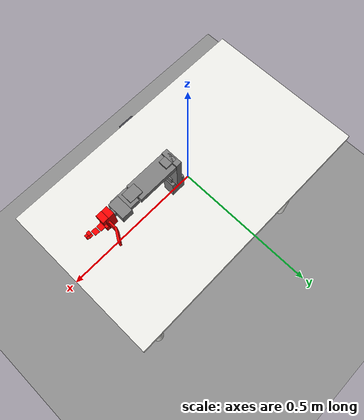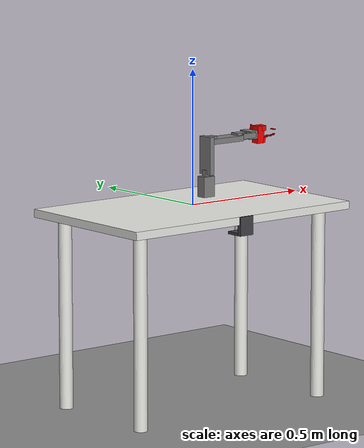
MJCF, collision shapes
<mujoco model="so101_clamped_table_scene">

  <compiler angle="radian" autolimits="true" meshdir="../../../so101_assets/assets"/>

  <include file="../../../so101_assets/so101.xml"/>

  <visual>
    <headlight diffuse="0.3 0.3 0.3" ambient="0.4 0.4 0.4" specular="0.1 0.1 0.1"/>
    <quality shadowsize="4096"/>
  </visual>

  <asset>
    <material name="table_white_mat" rgba="0.92 0.92 0.90 1" specular="0.15" shininess="0.2" reflectance="0.05"/>
    <material name="floor_mat" rgba="0.55 0.55 0.55 1" specular="0.05" shininess="0.0"/>
    <material name="clamp_mat" rgba="0.25 0.25 0.28 1" specular="0.6" shininess="0.7" reflectance="0.15"/>
    <material name="clamp_screw_mat" rgba="0.55 0.55 0.58 1" specular="0.8" shininess="0.8" reflectance="0.25"/>
  </asset>

  <default>
    <default class="table_collision">
      <geom contype="1" conaffinity="1" condim="3" friction="0.6 0.01 0.001" solref="0.005 1" solimp="0.95 0.99 0.001"/>
    </default>
    <!-- Visual-only: no collision, no mass contribution to contacts. -->
    <default class="clamp_visual">
      <geom contype="0" conaffinity="0" group="1" material="clamp_mat"/>
    </default>
  </default>

  <worldbody>
    <light name="top_light" pos="0 0 1.8" dir="0 0 -1" diffuse="0.6 0.6 0.6" specular="0.1 0.1 0.1" castshadow="true"/>

    <camera name="table_view" pos="0.9 -0.9 0.6" xyaxes="0.707 0.707 0 -0.4 0.4 0.82"/>

    <geom name="floor" type="plane" size="2.5 2.5 0.05" pos="0 0 -0.74" material="floor_mat" class="table_collision"/>

    <body name="table" pos="0 0 -0.74">
      <geom name="tabletop" type="box" size="0.50 0.30 0.015" pos="0 0 0.725"
            material="table_white_mat" class="table_collision"/>

      <geom name="table_leg_front_left" type="cylinder" size="0.025 0.355" pos="0.42 0.22 0.355"
            material="table_white_mat" class="table_collision"/>
      <geom name="table_leg_front_right" type="cylinder" size="0.025 0.355" pos="0.42 -0.22 0.355"
            material="table_white_mat" class="table_collision"/>
      <geom name="table_leg_back_left" type="cylinder" size="0.025 0.355" pos="-0.42 0.22 0.355"
            material="table_white_mat" class="table_collision"/>
      <geom name="table_leg_back_right" type="cylinder" size="0.025 0.355" pos="-0.42 -0.22 0.355"
            material="table_white_mat" class="table_collision"/>
    </body>

    <!-- C-clamp gripping the table edge under the robot's base plate.
         Positions/sizes here are placeholders overwritten by
         run_robot_clamped.py's CONFIG block before compile. -->
    <body name="clamp" pos="0 -0.264 0">
      <geom name="clamp_top_pad" class="clamp_visual" type="box" size="0.030 0.026 0.005" pos="0 0 -0.005"/>
      <geom name="clamp_spine" class="clamp_visual" type="box" size="0.030 0.008 0.035" pos="0 -0.034 -0.035"/>
      <geom name="clamp_bottom_jaw" class="clamp_visual" type="box" size="0.030 0.026 0.005" pos="0 0 -0.065"/>
      <geom name="clamp_screw" class="clamp_visual" type="cylinder" size="0.005 0.014" pos="0 0 -0.051"
            material="clamp_screw_mat"/>
      <geom name="clamp_screw_handle" class="clamp_visual" type="capsule" size="0.004 0.020"
            fromto="-0.020 0 -0.070 0.020 0 -0.070" material="clamp_screw_mat"/>
    </body>

  </worldbody>
</mujoco>

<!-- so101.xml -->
<mujoco model="so101">
  <option integrator="implicitfast" timestep="0.005" cone="elliptic" iterations="10" ls_iterations="20" impratio="10"/>

  <compiler angle="radian" autolimits="true"/>

  <visual>
    <scale contactwidth="0.1" contactheight="0.05" forcewidth="0.02" framelength="0.75" framewidth="0.025"
      camera="0.2"/>
  </visual>

  <default>
    <mesh maxhullvert="128"/>

    <default class="so101">
      <joint damping="1" frictionloss="0.1" armature="0.005"/>
      <position kp="50"/>
      <default class="visual">
        <geom type="mesh" contype="0" conaffinity="0" group="2"/>
      </default>
      <default class="collision">
        <geom group="3" condim="3"/>
      </default>
      <default class="collision_gripper">
        <geom group="3" condim="6" friction="0.45 5e-3 5e-4" solref="0.01 1" priority="1" rgba="1.0 0 0 1.0" mass="0"/>
      </default>
      <default class="collision_gripper_mesh">
        <geom group="4" condim="6" friction="1 5e-3 5e-4" solref="0.01 1" priority="1" rgba="1.0 0 0 1.0" mass="0"
          contype="0" conaffinity="0"/>
      </default>
    </default>

    <default class="sts3215">
      <geom contype="0" conaffinity="0"/>
      <joint damping="0.60" frictionloss="0.052" armature="0.028"/>
      <position kp="400" kv="25" forcerange="-2.94 2.94"/>
    </default>

    <default class="backlash">
      <!-- +/- 0.5° of backlash – not added to any joints for now -->
      <joint damping="0.01" frictionloss="0" armature="0.01" limited="true" range="-0.0087267 0.0087267"/>
    </default>
  </default>

  <asset>
    <mesh file="waveshare_mounting_plate_so101_v2.stl"/>
    <mesh file="sts3215_03a_v1.stl"/>
    <mesh file="motor_holder_so101_base_v1.stl"/>
    <mesh file="wrist_roll_follower_so101_v1.stl"/>
    <mesh file="moving_jaw_so101_v1.stl"/>
    <mesh file="base_motor_holder_so101_v1.stl"/>
    <mesh file="upper_arm_so101_v1.stl"/>
    <mesh file="wrist_roll_pitch_so101_v2.stl"/>
    <mesh file="under_arm_so101_v1.stl"/>
    <mesh file="rotation_pitch_so101_v1.stl"/>
    <mesh file="motor_holder_so101_wrist_v1.stl"/>
    <mesh file="sts3215_03a_no_horn_v1.stl"/>
    <mesh file="base_so101_v2.stl"/>
    <mesh file="moving_jaw_so101_gripper_v1.stl"/>
    <mesh file="wrist_roll_follower_so101_camera_mount.stl"/>
    <!-- Gripper collision meshes. -->
    <mesh maxhullvert="64" file="wrist_roll_follower_so101_gripper_part0_v1.stl"/>
    <mesh maxhullvert="64" file="moving_jaw_so101_gripper_part0_v1.stl"/>
    <mesh maxhullvert="64" file="moving_jaw_so101_gripper_part1_v1.stl"/>
    <material name="base_motor_holder_so101_v1_material" rgba="0.94 0.90 0.82 1"/>
    <material name="base_so101_v2_material" rgba="0.94 0.90 0.82 1"/>
    <material name="sts3215_03a_v1_material" rgba="0.15 0.15 0.15 1"/>
    <material name="waveshare_mounting_plate_so101_v2_material" rgba="0.94 0.90 0.82 1"/>
    <material name="motor_holder_so101_base_v1_material" rgba="0.94 0.90 0.82 1"/>
    <material name="rotation_pitch_so101_v1_material" rgba="0.94 0.90 0.82 1"/>
    <material name="upper_arm_so101_v1_material" rgba="0.94 0.90 0.82 1"/>
    <material name="under_arm_so101_v1_material" rgba="0.94 0.90 0.82 1"/>
    <material name="motor_holder_so101_wrist_v1_material" rgba="0.94 0.90 0.82 1"/>
    <material name="sts3215_03a_no_horn_v1_material" rgba="0.15 0.15 0.15 1.0"/>
    <material name="wrist_roll_pitch_so101_v2_material" rgba="0.94 0.90 0.82 1"/>
    <material name="wrist_roll_follower_so101_v1_material" rgba="0.94 0.90 0.82 1"/>
    <material name="moving_jaw_so101_v1_material" rgba="0.94 0.90 0.82 1"/>
  </asset>

  <worldbody>
    <!-- Link base -->
    <body name="base" pos="0 0 0" quat="1 0 0 0" childclass="so101">
      <inertial pos="0.0137179 -5.19711e-05 0.0334843" mass="0.147"
        fullinertia="0.000114686 0.000136117 0.000130364 -4.59787e-07 4.97151e-06 9.75275e-08"/>
      <!-- Part base_motor_holder_so101_v1 -->
      <geom type="mesh" class="visual" pos="-0.006365 -9.9e-05 -0.0024" quat="1 1 1 1" mesh="base_motor_holder_so101_v1"
        material="base_motor_holder_so101_v1_material"/>
      <!-- Part base_so101_v2 -->
      <geom type="mesh" class="visual" pos="-0.006365 0 -0.0024" quat="1 1 1 1" mesh="base_so101_v2"
        material="base_so101_v2_material"/>
      <!-- Part sts3215_03a_v1 -->
      <geom type="mesh" class="visual" pos="0.0263353 0 0.0437" quat="1 0 0 0" mesh="sts3215_03a_v1"
        material="sts3215_03a_v1_material"/>
      <!-- Part waveshare_mounting_plate_so101_v2 -->
      <geom type="mesh" class="visual" pos="-0.0309827 -0.000199 0.0474" quat="1 1 1 1"
        mesh="waveshare_mounting_plate_so101_v2" material="waveshare_mounting_plate_so101_v2_material"/>
      <!-- Frame baseframe -->
      <site group="3" name="baseframe" pos="0 0 0" quat="1 0 0 0"/>
      <!-- Link shoulder -->
      <body name="shoulder" pos="0.0388353 0 0.0624" quat="0 0 -1 0">
        <!-- Joint from base to shoulder -->
        <joint axis="0 0 1" name="shoulder_pan" type="hinge" range="-1.91986 1.91986" class="sts3215"/>
        <inertial pos="-0.0307604 -1.7e-05 -0.0252713" mass="0.100006"
          fullinertia="8.3759e-05 8.10403e-05 2.39783e-05 7.55525e-08 -1.16342e-06 1.54663e-07"/>
        <!-- Part sts3215_03a_v1_2 -->
        <geom type="mesh" class="visual" pos="-0.030399 0.000422 -0.0417" quat="1 1 1 -1" mesh="sts3215_03a_v1"
          material="sts3215_03a_v1_material"/>
        <geom type="box" class="collision" pos="-0.030399 0.000422 -0.0387" quat="1 1 1 -1" size="0.023 0.015 0.01"/>
        <!-- Part motor_holder_so101_base_v1 -->
        <geom type="mesh" class="visual" pos="-0.067599 -0.0001778 0.01585" quat="1 1 -1 1"
          mesh="motor_holder_so101_base_v1" material="motor_holder_so101_base_v1_material"/>
        <geom type="box" class="collision" pos="-0.025 0 0.0" quat="1 1 -1 1" size="0.038 0.025 0.02"/>
        <!-- Part rotation_pitch_so101_v1 -->
        <geom type="mesh" class="visual" pos="0.012201 2.2e-05 0.0464" quat="1 -1 0 0" mesh="rotation_pitch_so101_v1"
          material="rotation_pitch_so101_v1_material"/>
        <!-- Link upper_arm -->
        <body name="upper_arm" pos="-0.0303992 -0.0182778 -0.0542" quat="1 -1 -1 -1">
          <!-- Joint from shoulder to upper_arm -->
          <joint axis="0 0 1" name="shoulder_lift" type="hinge" range="-1.7453293 1.7453293" class="sts3215"/>
          <inertial pos="-0.089847 -0.008382 0.018409" mass="0.103"
            fullinertia="4.08002e-05 0.000147318 0.000142487 -1.97819e-05 -4.03016e-08 8.97326e-09"/>
          <!-- Part sts3215_03a_v1_3 -->
          <geom type="mesh" class="visual" pos="-0.11257 -0.0155 0.0187" quat="0 -1 1 0" mesh="sts3215_03a_v1"
            material="sts3215_03a_v1_material"/>
          <geom type="box" class="collision" pos="-0.06 0 0.02" quat="0 -1 1 0" size="0.01 0.07 0.03"/>
          <!-- Part upper_arm_so101_v1 -->
          <geom type="mesh" class="visual" pos="-0.065085 0.012 0.0182" quat="0 1 0 0" mesh="upper_arm_so101_v1"
            material="upper_arm_so101_v1_material"/>
          <geom type="box" class="collision" pos="-0.12 -0.014 0.0182" quat="0 1 0 0" size="0.01 0.02 0.015"/>
          <!-- Link lower_arm -->
          <body name="lower_arm" pos="-0.11257 -0.028 0" quat="1 0 0 1">
            <!-- Joint from upper_arm to lower_arm -->
            <!-- Note: 5-degree calibration offset applied to joint range -->
            <joint axis="0 0 1" name="elbow_flex" type="hinge" range="-1.69 1.69" class="sts3215"/>
            <inertial pos="-0.098070 0.0032438 0.018283" mass="0.104"
              fullinertia="2.87438e-05 0.000159844 0.00014529 7.41152e-06 1.26409e-06 -4.90188e-08"/>
            <!-- Part under_arm_so101_v1 -->
            <geom type="mesh" class="visual" pos="-0.06485 -0.032 0.0182" quat="0 1 0 0" mesh="under_arm_so101_v1"
              material="under_arm_so101_v1_material"/>
            <geom type="box" class="collision" pos="-0.05 0 0.0182" quat="0 1 0 0" size="0.07 0.01 0.03"/>
            <!-- Part motor_holder_so101_wrist_v1 -->
            <geom type="mesh" class="visual" pos="-0.06485 -0.032 0.018" quat="0 -1 0 0"
              mesh="motor_holder_so101_wrist_v1" material="motor_holder_so101_wrist_v1_material"/>
            <geom type="box" class="collision" pos="-0.125 0.005 0.018" quat="0 -1 0 0" size="0.023 0.013 0.018"/>
            <!-- Part sts3215_03a_v1_4 -->
            <geom type="mesh" class="visual" pos="-0.1224 0.0052 0.0187" quat="0 0 1 0" mesh="sts3215_03a_v1"
              material="sts3215_03a_v1_material"/>
            <!-- Link wrist -->
            <body name="wrist" pos="-0.1349 0.0052 0" quat="1 0 0 -1">
              <!-- Joint from lower_arm to wrist -->
              <joint axis="0 0 1" name="wrist_flex" type="hinge" range="-1.658063 1.658063" class="sts3215"/>
              <inertial pos="-0.000103312 -0.0386143 0.0281156" mass="0.079"
                fullinertia="3.68263e-05 2.5391e-05 2.1e-05 1.7893e-08 -5.28128e-08 3.6412e-06"/>
              <!-- Part sts3215_03a_no_horn_v1 -->
              <geom type="mesh" class="visual" pos="0 -0.0424 0.0306" quat="1 1 1 -1" mesh="sts3215_03a_no_horn_v1"
                material="sts3215_03a_no_horn_v1_material"/>
              <geom type="box" class="collision" pos="0 -0.0424 0.0256" quat="1 1 1 -1" size="0.029 0.015 0.018"/>
              <!-- Part wrist_roll_pitch_so101_v2 -->
              <geom type="mesh" class="visual" pos="0 -0.028 0.0181" quat="1 -1 -1 -1" mesh="wrist_roll_pitch_so101_v2"
                material="wrist_roll_pitch_so101_v2_material"/>
              <geom type="box" class="collision" pos="0 -0.02 0.0191" quat="1 -1 -1 -1" size="0.027 0.01 0.03"/>
              <!-- Link gripper -->
              <body name="gripper" pos="5.55112e-17 -0.0611 0.0181" quat="0.0172091 -0.0172091 0.706897 0.706897">
                <!-- Joint from wrist to gripper -->
                <joint axis="0 0 1" name="wrist_roll" type="hinge" range="-2.7438473 2.7438473" class="sts3215"/>
                <inertial pos="0.000214 0.000245 -0.025187" mass="0.087"
                  fullinertia="2.75087e-05 4.33657e-05 3.45059e-05 -3.35241e-07 -5.7352e-06 -5.17847e-08"/>
                <!-- Part sts3215_03a_v1_5 -->
                <geom type="mesh" class="visual" pos="0.0077 0.0001 -0.0234" quat="1 -1 0 0" mesh="sts3215_03a_v1"
                  material="sts3215_03a_v1_material"/>
                <!-- Part wrist_roll_follower_so101_v1 (fixed jaw) -->
                <geom type="mesh" class="visual" pos="0 -0.000218 0.00095" quat="0 1 0 0"
                  mesh="wrist_roll_follower_so101_v1" material="wrist_roll_follower_so101_v1_material"/>
                <geom type="box" class="collision" pos="0 -0.000218 0.00095" quat="0 1 0 0" size="0.01 0.01 0.018"/>
                <!-- Part wrist_roll_follower_so101_v1 gripper collision  -->
                <geom name="fixed_jaw_box1" class="collision_gripper" type="box" size="0.0325 0.015 0.015"
                  pos="-0.0025 0 -0.022"/>
                <geom name="fixed_jaw_box2" class="collision_gripper" type="box" size="0.01 0.015 0.005"
                  pos="-0.024 0 -0.04"/>
                <geom name="fixed_jaw_sph_tip1" class="collision_gripper" type="sphere" size="0.00075"
                  pos="-0.0081 0 -0.101"/>
                <geom name="fixed_jaw_sph_tip2" class="collision_gripper" type="sphere" size="0.00075"
                  pos="-0.0081 0.0035 -0.0975"/>
                <geom name="fixed_jaw_sph_tip3" class="collision_gripper" type="sphere" size="0.00075"
                  pos="-0.0081 -0.0035 -0.0975"/>
                <geom type="mesh" class="collision_gripper_mesh" pos="0 -0.000218 0.00095" quat="0 1 0 0"
                  mesh="wrist_roll_follower_so101_gripper_part0_v1"/>
                <geom name="fixed_jaw_box3" class="collision_gripper" type="capsule" size="0.0011 0.002"
                  pos="-0.009 0 -0.103" euler="1.57 0 0"/>
                <geom name="fixed_jaw_box4" class="collision_gripper" type="box" size="0.001 0.004 0.004"
                  pos="-0.009 0 -0.0982"/>
                <geom name="fixed_jaw_box5" class="collision_gripper" type="box" size="0.001 0.005 0.006"
                  pos="-0.0108 0 -0.0905"/>
                <geom name="fixed_jaw_box6" class="collision_gripper" type="box" size="0.001 0.009 0.008"
                  pos="-0.0125 0 -0.0727"/>
                <geom name="fixed_jaw_box7" class="collision_gripper" type="box" size="0.001 0.01 0.008"
                  pos="-0.0143 0 -0.053"/>
                <site group="3" name="gripperframe" pos="0.012 -0.000218 -0.098127" quat="0 0 1 0"/>
                <!-- Camera mount -->
                <body name="camera_mount">
                  <camera name="wrist_cam" mode="fixed" pos="0.0 0.075 -0.025" euler="-0.1745 0 0" resolution="1920 1080"
                    fovy="48.5"/>
                  <geom type="mesh" mass="0.012" class="visual" pos="0 -0.000218 0.00095" quat="0 1 0 0"
                    mesh="wrist_roll_follower_so101_camera_mount" material="wrist_roll_follower_so101_v1_material"/>
                  <geom name="camera_box1" class="collision_gripper" type="box" size="0.015 0.015 0.003"
                    pos="-0.0025 0.03 -0.03"/>
                  <geom name="camera_box2" class="collision_gripper" type="box" size="0.021 0.021 0.003"
                    pos="-0.001 0.06 -0.04" euler="-0.55 0 0"/>
                </body>
                <!-- Link moving_jaw_so101_v1 -->
                <body name="moving_jaw_so101_v1" pos="0.0202 0.0188 -0.0234" quat="1 1 0 0">
                  <!-- Joint from gripper to moving_jaw_so101_v1 -->
                  <joint axis="0 0 1" name="gripper" type="hinge" range="-0.174533 1.7453292" class="sts3215"/>
                  <inertial pos="-0.001575 -0.0300244 0.0192755" mass="0.012"
                    fullinertia="6.61427e-06 1.89032e-06 5.28738e-06 -3.19807e-07 -5.90717e-09 -1.09945e-07"/>
                  <!-- Part moving_jaw_so101_v1 -->
                  <geom type="mesh" class="visual" pos="0 0 0.0189" quat="1 0 0 0" mesh="moving_jaw_so101_v1"
                    material="moving_jaw_so101_v1_material"/>
                  <!-- Part moving_jaw_so101_v1 gripper collisions -->
                  <geom type="mesh" class="collision_gripper_mesh" pos="0 0 0.0189" quat="1 0 0 0"
                    mesh="moving_jaw_so101_gripper_part0_v1"/>
                  <geom type="mesh" class="collision_gripper_mesh" pos="0 0 0.0189" quat="1 0 0 0"
                    mesh="moving_jaw_so101_gripper_part1_v1"/>
                  <geom name="moving_jaw_box1" class="collision_gripper" type="box" size="0.01 0.01 0.015"
                    pos="-0.0 -0.013 0.019"/>
                  <geom name="moving_jaw_sph_tip1" class="collision_gripper" type="sphere" size="0.00075"
                    pos="-0.012 -0.078 0.0192"/>
                  <geom name="moving_jaw_sph_tip2" class="collision_gripper" type="sphere" size="0.00075"
                    pos="-0.012 -0.0745 0.0225"/>
                  <geom name="moving_jaw_sph_tip3" class="collision_gripper" type="sphere" size="0.00075"
                    pos="-0.012 -0.0745 0.0155"/>
                  <geom name="moving_jaw_box2" class="collision_gripper" type="box" size="0.001 0.004 0.004"
                    pos="-0.0113 -0.076 0.01875"/>
                  <geom name="moving_jaw_box3" class="collision_gripper" type="box" size="0.001 0.005 0.006"
                    pos="-0.0093 -0.067 0.01875"/>
                </body>
              </body>
            </body>
          </body>
        </body>
      </body>
    </body>
  </worldbody>

  <actuator>
    <position class="sts3215" name="shoulder_pan" joint="shoulder_pan" ctrlrange="-1.91986 1.91986"/>
    <position class="sts3215" name="shoulder_lift" joint="shoulder_lift" ctrlrange="-1.74533 1.74533"/>
    <position class="sts3215" name="elbow_flex" joint="elbow_flex" ctrlrange="-1.69 1.69"/>
    <position class="sts3215" name="wrist_flex" joint="wrist_flex" ctrlrange="-1.65806 1.65806" kp="20" kv="1"/>
    <position class="sts3215" name="wrist_roll" joint="wrist_roll" ctrlrange="-2.74385 2.84121" kv="35"/>
    <position class="sts3215" name="gripper" joint="gripper" ctrlrange="-0.17453 1.74533" kp="80" kv="6"/>
  </actuator>
</mujoco>
